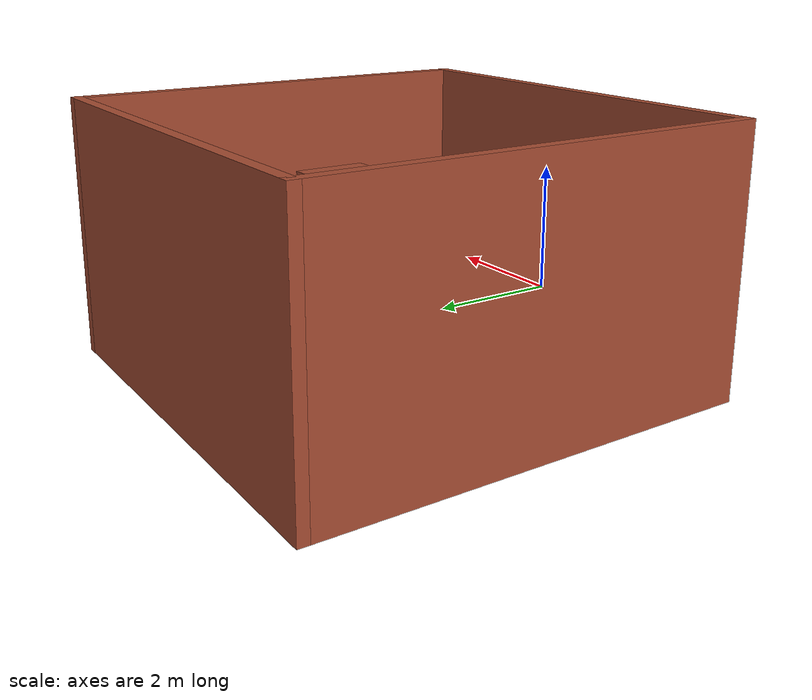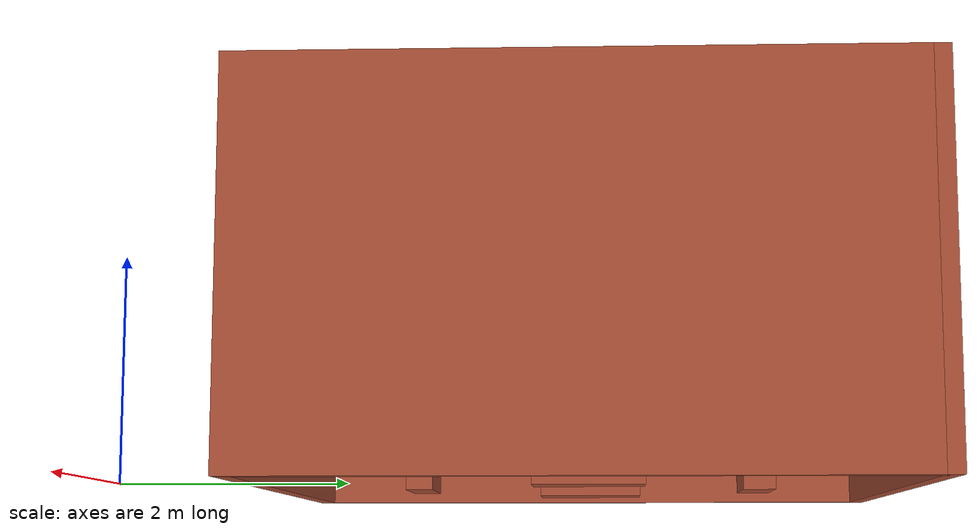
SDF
<?xml version='1.0'?>
<sdf version='1.5'>
  <model name='house_5'>
    <pose frame=''>-1.685 4.06 0 0 -0 0</pose>
    <link name='Wall_11'>
      <collision name='Wall_11_Collision'>
        <geometry>
          <box>
            <size>1 0.5 2.5</size>
          </box>
        </geometry>
        <pose frame=''>0 0 1.25 0 -0 0</pose>
      </collision>
      <visual name='Wall_11_Visual'>
        <pose frame=''>0 0 1.25 0 -0 0</pose>
        <geometry>
          <box>
            <size>1 0.5 2.5</size>
          </box>
        </geometry>
        <material>
          <script>
            <uri>file://media/materials/scripts/gazebo.material</uri>
            <name>Gazebo/Bricks</name>
          </script>
          <ambient>1 1 1 1</ambient>
        </material>
      </visual>
      <pose frame=''>-1.20707 0.01085 0 0 0 -1.5708</pose>
    </link>
    <link name='Wall_13'>
      <collision name='Wall_13_Collision'>
        <geometry>
          <box>
            <size>0.85 0.25 2.5</size>
          </box>
        </geometry>
        <pose frame=''>0 0 1.25 0 -0 0</pose>
      </collision>
      <visual name='Wall_13_Visual'>
        <pose frame=''>0 0 1.25 0 -0 0</pose>
        <geometry>
          <box>
            <size>0.85 0.25 2.5</size>
          </box>
        </geometry>
        <material>
          <script>
            <uri>file://media/materials/scripts/gazebo.material</uri>
            <name>Gazebo/Bricks</name>
          </script>
          <ambient>1 1 1 1</ambient>
        </material>
      </visual>
      <pose frame=''>0.037455 -1.57115 0 0 -0 0</pose>
    </link>
    <link name='Wall_2'>
      <collision name='Wall_2_Collision'>
        <geometry>
          <box>
            <size>6 0.15 3.5</size>
          </box>
        </geometry>
        <pose frame=''>0 0 1.75 0 -0 0</pose>
      </collision>
      <visual name='Wall_2_Visual'>
        <pose frame=''>0 0 1.75 0 -0 0</pose>
        <geometry>
          <box>
            <size>6 0.15 3.5</size>
          </box>
        </geometry>
        <material>
          <script>
            <uri>file://media/materials/scripts/gazebo.material</uri>
            <name>Gazebo/Bricks</name>
          </script>
          <ambient>1 1 1 1</ambient>
        </material>
      </visual>
      <pose frame=''>-2.925 0 0 0 0 -1.5708</pose>
    </link>
    <link name='Wall_3'>
      <collision name='Wall_3_Collision'>
        <geometry>
          <box>
            <size>6 0.15 3.5</size>
          </box>
        </geometry>
        <pose frame=''>0 0 1.75 0 -0 0</pose>
      </collision>
      <visual name='Wall_3_Visual'>
        <pose frame=''>0 0 1.75 0 -0 0</pose>
        <geometry>
          <box>
            <size>6 0.15 3.5</size>
          </box>
        </geometry>
        <material>
          <script>
            <uri>file://media/materials/scripts/gazebo.material</uri>
            <name>Gazebo/Bricks</name>
          </script>
          <ambient>1 1 1 1</ambient>
        </material>
      </visual>
      <pose frame=''>0 -2.925 0 0 -0 0</pose>
    </link>
    <link name='Wall_4'>
      <collision name='Wall_4_Collision'>
        <geometry>
          <box>
            <size>6 0.15 3.5</size>
          </box>
        </geometry>
        <pose frame=''>0 0 1.75 0 -0 0</pose>
      </collision>
      <visual name='Wall_4_Visual'>
        <pose frame=''>0 0 1.75 0 -0 0</pose>
        <geometry>
          <box>
            <size>6 0.15 3.5</size>
          </box>
        </geometry>
        <material>
          <script>
            <uri>file://media/materials/scripts/gazebo.material</uri>
            <name>Gazebo/Bricks</name>
          </script>
          <ambient>1 1 1 1</ambient>
        </material>
      </visual>
      <pose frame=''>2.925 0 0 0 -0 1.5708</pose>
    </link>
    <link name='Wall_5'>
      <collision name='Wall_5_Collision'>
        <geometry>
          <box>
            <size>6 0.15 3.5</size>
          </box>
        </geometry>
        <pose frame=''>0 0 1.75 0 -0 0</pose>
      </collision>
      <visual name='Wall_5_Visual'>
        <pose frame=''>0 0 1.75 0 -0 0</pose>
        <geometry>
          <box>
            <size>6 0.15 3.5</size>
          </box>
        </geometry>
        <material>
          <script>
            <uri>file://media/materials/scripts/gazebo.material</uri>
            <name>Gazebo/Bricks</name>
          </script>
          <ambient>1 1 1 1</ambient>
        </material>
      </visual>
      <pose frame=''>0 2.925 0 0 -0 3.14159</pose>
    </link>
    <link name='Wall_7'>
      <collision name='Wall_7_Collision'>
        <geometry>
          <box>
            <size>0.9 0.3 2.5</size>
          </box>
        </geometry>
        <pose frame=''>0 0 1.25 0 -0 0</pose>
      </collision>
      <visual name='Wall_7_Visual'>
        <pose frame=''>0 0 1.25 0 -0 0</pose>
        <geometry>
          <box>
            <size>0.9 0.3 2.5</size>
          </box>
        </geometry>
        <material>
          <script>
            <uri>file://media/materials/scripts/gazebo.material</uri>
            <name>Gazebo/Bricks</name>
          </script>
          <ambient>1 1 1 1</ambient>
        </material>
      </visual>
      <pose frame=''>-0.006336 1.59431 0 0 -0 0</pose>
    </link>
    <link name='Wall_9'>
      <collision name='Wall_9_Collision'>
        <geometry>
          <box>
            <size>1 0.5 2.5</size>
          </box>
        </geometry>
        <pose frame=''>0 0 1.25 0 -0 0</pose>
      </collision>
      <visual name='Wall_9_Visual'>
        <pose frame=''>0 0 1.25 0 -0 0</pose>
        <geometry>
          <box>
            <size>1 0.5 2.5</size>
          </box>
        </geometry>
        <material>
          <script>
            <uri>file://media/materials/scripts/gazebo.material</uri>
            <name>Gazebo/Bricks</name>
          </script>
          <ambient>1 1 1 1</ambient>
        </material>
      </visual>
      <pose frame=''>1.25287 0.01705 0 0 0 -1.5708</pose>
    </link>
    <static>1</static>
  </model>
</sdf>
